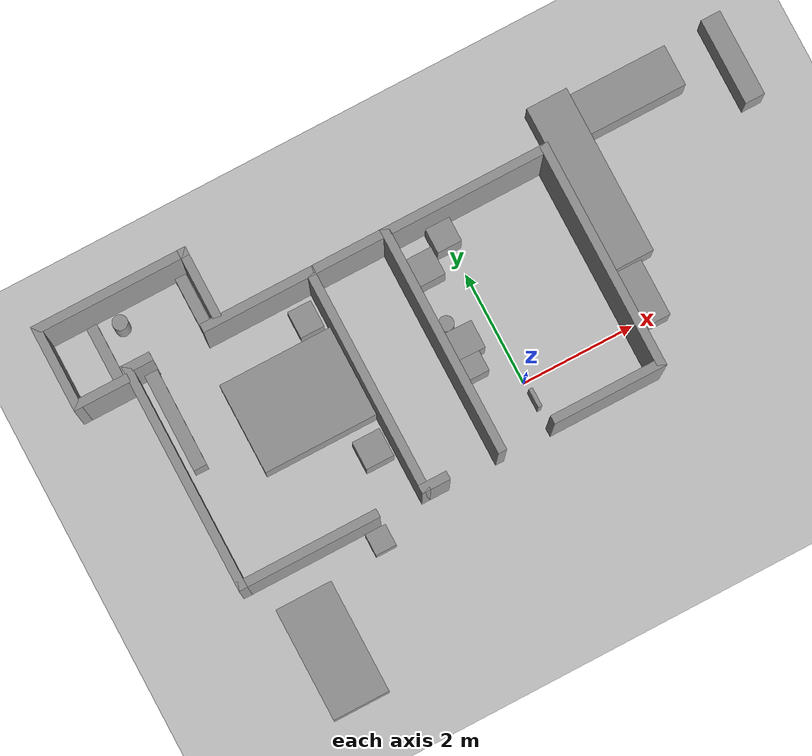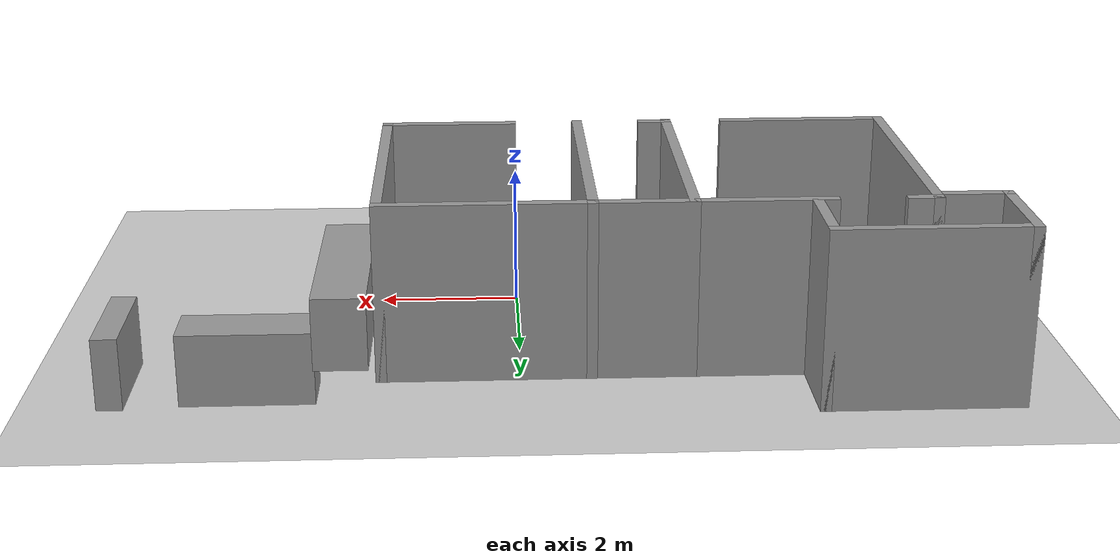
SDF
<sdf version="1.6">
 <world name="default">
  <model name="ground_plane">
   <static>1</static>
   <link name="link">
    <collision name="collision">
     <geometry><plane><normal>0 0 1</normal><size>100 100</size></plane></geometry>
     <surface><friction><ode><mu>100</mu><mu2>50</mu2></ode></friction></surface>
    </collision>
    <visual name="visual">
     <cast_shadows>0</cast_shadows>
     <geometry><plane><normal>0 0 1</normal><size>100 100</size></plane></geometry>
     <material>
      <script><uri>file://media/materials/scripts/gazebo.material</uri><name>Gazebo/Grey</name></script>
     </material>
    </visual>
   </link>
  </model>
  <model name="cma_escritorio">
   <pose>-1.8304 1.03024 0 0 -0 0</pose>
   <link name="Wall_11">
    <collision name="Wall_11_Collision">
     <geometry><box><size>2 0.15 2.5</size></box></geometry>
     <pose>0 0 1.25 0 -0 0</pose>
    </collision>
    <visual name="Wall_11_Visual">
     <pose>0 0 1.25 0 -0 0</pose>
     <geometry><box><size>2 0.15 2.5</size></box></geometry>
     <material>
      <script><uri>file://media/materials/scripts/gazebo.material</uri><name>Gazebo/Grey</name></script>
      <ambient>1 1 1 1</ambient>
     </material>
    </visual>
    <pose>-1.4 1.93 0 0 -0 3.14159</pose>
   </link>
   <link name="Wall_2">
    <collision name="Wall_2_Collision">
     <geometry><box><size>4 0.15 2.5</size></box></geometry>
     <pose>0 0 1.25 0 -0 0</pose>
    </collision>
    <visual name="Wall_2_Visual">
     <pose>0 0 1.25 0 -0 0</pose>
     <geometry><box><size>4 0.15 2.5</size></box></geometry>
     <material>
      <script><uri>file://media/materials/scripts/gazebo.material</uri><name>Gazebo/Grey</name></script>
      <ambient>1 1 1 1</ambient>
     </material>
    </visual>
    <pose>0.875 0.005 0 0 -0 1.5708</pose>
   </link>
   <link name="Wall_25">
    <collision name="Wall_25_Collision">
     <geometry><box><size>2.5 0.15 2.5</size></box></geometry>
     <pose>0 0 1.25 0 -0 0</pose>
    </collision>
    <visual name="Wall_25_Visual">
     <pose>0 0 1.25 0 -0 0</pose>
     <geometry><box><size>2.5 0.15 2.5</size></box></geometry>
     <material>
      <script><uri>file://media/materials/scripts/gazebo.material</uri><name>Gazebo/Grey</name></script>
      <ambient>1 1 1 1</ambient>
     </material>
    </visual>
    <pose>-2.55 -1.93 0 0 -0 3.14159</pose>
   </link>
   <link name="Wall_26">
    <collision name="Wall_26_Collision">
     <geometry><box><size>4 0.15 2.5</size></box></geometry>
     <pose>0 0 1.25 0 -0 0</pose>
    </collision>
    <visual name="Wall_26_Visual">
     <pose>0 0 1.25 0 -0 0</pose>
     <geometry><box><size>4 0.15 2.5</size></box></geometry>
     <material>
      <script><uri>file://media/materials/scripts/gazebo.material</uri><name>Gazebo/Grey</name></script>
      <ambient>1 1 1 1</ambient>
     </material>
    </visual>
    <pose>-3.725 -0.005 0 0 -0 1.5708</pose>
   </link>
   <link name="Wall_27">
    <collision name="Wall_27_Collision">
     <geometry><box><size>0.5 0.15 2.5</size></box></geometry>
     <pose>0 0 1.25 0 -0 0</pose>
    </collision>
    <visual name="Wall_27_Visual">
     <pose>0 0 1.25 0 -0 0</pose>
     <geometry><box><size>0.5 0.15 2.5</size></box></geometry>
     <material>
      <script><uri>file://media/materials/scripts/gazebo.material</uri><name>Gazebo/Grey</name></script>
      <ambient>1 1 1 1</ambient>
     </material>
    </visual>
    <pose>-3.55 1.92 0 0 -0 0</pose>
   </link>
   <link name="Wall_3">
    <collision name="Wall_3_Collision">
     <geometry><box><size>3 0.15 2.5</size></box></geometry>
     <pose>0 0 1.25 0 -0 0</pose>
    </collision>
    <visual name="Wall_3_Visual">
     <pose>0 0 1.25 0 -0 0</pose>
     <geometry><box><size>3 0.15 2.5</size></box></geometry>
     <material>
      <script><uri>file://media/materials/scripts/gazebo.material</uri><name>Gazebo/Grey</name></script>
      <ambient>1 1 1 1</ambient>
     </material>
    </visual>
    <pose>2.3 1.93 0 0 -0 0</pose>
   </link>
   <link name="Wall_4">
    <collision name="Wall_4_Collision">
     <geometry><box><size>4 0.15 2.5</size></box></geometry>
     <pose>0 0 1.25 0 -0 0</pose>
    </collision>
    <visual name="Wall_4_Visual">
     <pose>0 0 1.25 0 -0 0</pose>
     <geometry><box><size>4 0.15 2.5</size></box></geometry>
     <material>
      <script><uri>file://media/materials/scripts/gazebo.material</uri><name>Gazebo/Grey</name></script>
      <ambient>1 1 1 1</ambient>
     </material>
    </visual>
    <pose>3.725 0.005 0 0 0 -1.5708</pose>
   </link>
   <link name="Wall_5">
    <collision name="Wall_5_Collision">
     <geometry><box><size>2 0.15 2.5</size></box></geometry>
     <pose>0 0 1.25 0 -0 0</pose>
    </collision>
    <visual name="Wall_5_Visual">
     <pose>0 0 1.25 0 -0 0</pose>
     <geometry><box><size>2 0.15 2.5</size></box></geometry>
     <material>
      <script><uri>file://media/materials/scripts/gazebo.material</uri><name>Gazebo/Grey</name></script>
      <ambient>1 1 1 1</ambient>
     </material>
    </visual>
    <pose>2.8 -1.92 0 0 -0 3.14159</pose>
   </link>
   <link name="Wall_7">
    <collision name="Wall_7_Collision">
     <geometry><box><size>1.5 0.15 2.5</size></box></geometry>
     <pose>0 0 1.25 0 -0 0</pose>
    </collision>
    <visual name="Wall_7_Visual">
     <pose>0 0 1.25 0 -0 0</pose>
     <geometry><box><size>1.5 0.15 2.5</size></box></geometry>
     <material>
      <script><uri>file://media/materials/scripts/gazebo.material</uri><name>Gazebo/Grey</name></script>
      <ambient>1 1 1 1</ambient>
     </material>
    </visual>
    <pose>0.2 1.93 0 0 -0 3.14159</pose>
   </link>
   <link name="Wall_8">
    <collision name="Wall_8_Collision">
     <geometry><box><size>4 0.15 2.5</size></box></geometry>
     <pose>0 0 1.25 0 -0 0</pose>
    </collision>
    <visual name="Wall_8_Visual">
     <pose>0 0 1.25 0 -0 0</pose>
     <geometry><box><size>4 0.15 2.5</size></box></geometry>
     <material>
      <script><uri>file://media/materials/scripts/gazebo.material</uri><name>Gazebo/Grey</name></script>
      <ambient>1 1 1 1</ambient>
     </material>
    </visual>
    <pose>-0.475 0.005 0 0 0 -1.5708</pose>
   </link>
   <link name="Wall_9">
    <collision name="Wall_9_Collision">
     <geometry><box><size>0.5 0.15 2.5</size></box></geometry>
     <pose>0 0 1.25 0 -0 0</pose>
    </collision>
    <visual name="Wall_9_Visual">
     <pose>0 0 1.25 0 -0 0</pose>
     <geometry><box><size>0.5 0.15 2.5</size></box></geometry>
     <material>
      <script><uri>file://media/materials/scripts/gazebo.material</uri><name>Gazebo/Grey</name></script>
      <ambient>1 1 1 1</ambient>
     </material>
    </visual>
    <pose>-0.3 -1.92 0 0 -0 0</pose>
   </link>
   <static>1</static>
  </model>
  <model name="cma_banheiro">
   <pose>-5.22928 3.4871 0 0 -0 0</pose>
   <link name="Wall_0">
    <collision name="Wall_0_Collision">
     <geometry><box><size>1 0.15 2.5</size></box></geometry>
     <pose>0 0 1.25 0 -0 0</pose>
    </collision>
    <visual name="Wall_0_Visual">
     <pose>0 0 1.25 0 -0 0</pose>
     <geometry><box><size>1 0.15 2.5</size></box></geometry>
     <material>
      <script><uri>file://media/materials/scripts/gazebo.material</uri><name>Gazebo/Grey</name></script>
      <ambient>1 1 1 1</ambient>
     </material>
    </visual>
    <pose>-0.875 -0.675 0 0 -0 3.14159</pose>
   </link>
   <link name="Wall_1">
    <collision name="Wall_1_Collision">
     <geometry><box><size>1.5 0.15 2.5</size></box></geometry>
     <pose>0 0 1.25 0 -0 0</pose>
    </collision>
    <visual name="Wall_1_Visual">
     <pose>0 0 1.25 0 -0 0</pose>
     <geometry><box><size>1.5 0.15 2.5</size></box></geometry>
     <material>
      <script><uri>file://media/materials/scripts/gazebo.material</uri><name>Gazebo/Grey</name></script>
      <ambient>1 1 1 1</ambient>
     </material>
    </visual>
    <pose>-1.3 0 0 0 -0 1.5708</pose>
   </link>
   <link name="Wall_2">
    <collision name="Wall_2_Collision">
     <geometry><box><size>2.75 0.15 2.5</size></box></geometry>
     <pose>0 0 1.25 0 -0 0</pose>
    </collision>
    <visual name="Wall_2_Visual">
     <pose>0 0 1.25 0 -0 0</pose>
     <geometry><box><size>2.75 0.15 2.5</size></box></geometry>
     <material>
      <script><uri>file://media/materials/scripts/gazebo.material</uri><name>Gazebo/Grey</name></script>
      <ambient>1 1 1 1</ambient>
     </material>
    </visual>
    <pose>0 0.675 0 0 -0 0</pose>
   </link>
   <link name="Wall_4">
    <collision name="Wall_4_Collision">
     <geometry><box><size>1.25 0.15 2.5</size></box></geometry>
     <pose>0 0 1.25 0 -0 0</pose>
    </collision>
    <visual name="Wall_4_Visual">
     <pose>0 0 1.25 0 -0 0</pose>
     <geometry><box><size>1.25 0.15 2.5</size></box></geometry>
     <material>
      <script><uri>file://media/materials/scripts/gazebo.material</uri><name>Gazebo/Grey</name></script>
      <ambient>1 1 1 1</ambient>
     </material>
    </visual>
    <pose>1.3 0.125 0 0 0 -1.5708</pose>
   </link>
   <static>1</static>
  </model>
  <model name="cma_gaveteiro_pequeno_0">
   <link name="link_0">
    <pose>0.256174 1.25055 0.5 0 -0 0</pose>
    <inertial>
     <mass>0.187186</mass>
     <inertia>
      <ixx>0.01851</ixx>
      <ixy>0</ixy>
      <ixz>0</ixz>
      <iyy>0.0185276</iyy>
      <iyz>0</iyz>
      <izz>0.00583981</izz>
     </inertia>
    </inertial>
    <visual name="visual">
     <geometry><box><size>0.433317 0.432002 1</size></box></geometry>
     <material>
      <lighting>1</lighting>
      <script><uri>file://media/materials/scripts/gazebo.material</uri><name>Gazebo/Grey</name></script>
      <ambient>0.3 0.3 0.3 1</ambient>
      <diffuse>0.7 0.7 0.7 1</diffuse>
      <specular>0.01 0.01 0.01 1</specular>
      <emissive>0 0 0 1</emissive>
     </material>
    </visual>
    <collision name="collision">
     <geometry><box><size>0.433317 0.432002 1</size></box></geometry>
     <surface>
      <friction>
       <ode><mu>1</mu><mu2>1</mu2><fdir1>0 0 0</fdir1><slip1>0</slip1><slip2>0</slip2></ode>
       <torsional>
        <coefficient>1</coefficient>
        <patch_radius>0</patch_radius>
        <surface_radius>0</surface_radius>
        <use_patch_radius>1</use_patch_radius>
        <ode><slip>0</slip></ode>
       </torsional>
      </friction>
      <bounce><restitution_coefficient>0</restitution_coefficient><threshold>1e+06</threshold></bounce>
      <contact>
       <collide_without_contact>0</collide_without_contact>
       <collide_without_contact_bitmask>1</collide_without_contact_bitmask>
       <collide_bitmask>1</collide_bitmask>
       <ode>
        <soft_cfm>0</soft_cfm>
        <soft_erp>0.2</soft_erp>
        <kp>1e+13</kp>
        <kd>1</kd>
        <max_vel>0.01</max_vel>
        <min_depth>0</min_depth>
       </ode>
       <bullet>
        <split_impulse>1</split_impulse>
        <split_impulse_penetration_threshold>-0.01</split_impulse_penetration_threshold>
        <soft_cfm>0</soft_cfm>
        <soft_erp>0.2</soft_erp>
        <kp>1e+13</kp>
        <kd>1</kd>
       </bullet>
      </contact>
     </surface>
    </collision>
   </link>
   <static>0</static>
   <pose>-0.336046 1.39512 0 0 0 -5.9e-05</pose>
  </model>
  <model name="cma_gaveteiro">
   <link name="link_0">
    <pose>-0 4e-06 0 0 -0 0</pose>
    <inertial>
     <mass>0.245086</mass>
     <inertia>
      <ixx>0.025418</ixx>
      <ixy>0</ixy>
      <ixz>0</ixz>
      <iyy>0.0254411</iyy>
      <iyz>0</iyz>
      <izz>0.0100113</izz>
     </inertia>
    </inertial>
    <visual name="visual">
     <geometry><box><size>0.495657 0.494491 1</size></box></geometry>
     <material>
      <lighting>1</lighting>
      <script><uri>file://media/materials/scripts/gazebo.material</uri><name>Gazebo/Grey</name></script>
      <ambient>0.3 0.3 0.3 1</ambient>
      <diffuse>0.7 0.7 0.7 1</diffuse>
      <specular>0.01 0.01 0.01 1</specular>
      <emissive>0 0 0 1</emissive>
     </material>
    </visual>
    <collision name="collision">
     <geometry><box><size>0.495657 0.494491 1</size></box></geometry>
     <surface>
      <friction>
       <ode><mu>1</mu><mu2>1</mu2><fdir1>0 0 0</fdir1><slip1>0</slip1><slip2>0</slip2></ode>
       <torsional>
        <coefficient>1</coefficient>
        <patch_radius>0</patch_radius>
        <surface_radius>0</surface_radius>
        <use_patch_radius>1</use_patch_radius>
        <ode><slip>0</slip></ode>
       </torsional>
      </friction>
      <bounce><restitution_coefficient>0</restitution_coefficient><threshold>1e+06</threshold></bounce>
      <contact>
       <collide_without_contact>0</collide_without_contact>
       <collide_without_contact_bitmask>1</collide_without_contact_bitmask>
       <collide_bitmask>1</collide_bitmask>
       <ode>
        <soft_cfm>0</soft_cfm>
        <soft_erp>0.2</soft_erp>
        <kp>1e+13</kp>
        <kd>1</kd>
        <max_vel>0.01</max_vel>
        <min_depth>0</min_depth>
       </ode>
       <bullet>
        <split_impulse>1</split_impulse>
        <split_impulse_penetration_threshold>-0.01</split_impulse_penetration_threshold>
        <soft_cfm>0</soft_cfm>
        <soft_erp>0.2</soft_erp>
        <kp>1e+13</kp>
        <kd>1</kd>
       </bullet>
      </contact>
     </surface>
    </collision>
   </link>
   <static>0</static>
   <pose>-0.591988 2.3262 0.5 -1e-06 -1e-06 0.000484</pose>
  </model>
  <model name="cma_gaveteiro_0">
   <link name="link_0">
    <pose>-0 4e-06 0 0 -0 0</pose>
    <inertial>
     <mass>0.245086</mass>
     <inertia>
      <ixx>0.025418</ixx>
      <ixy>0</ixy>
      <ixz>0</ixz>
      <iyy>0.0254411</iyy>
      <iyz>0</iyz>
      <izz>0.0100113</izz>
     </inertia>
    </inertial>
    <visual name="visual">
     <geometry><box><size>0.495657 0.494491 1</size></box></geometry>
     <material>
      <lighting>1</lighting>
      <script><uri>file://media/materials/scripts/gazebo.material</uri><name>Gazebo/Grey</name></script>
      <ambient>0.3 0.3 0.3 1</ambient>
      <diffuse>0.7 0.7 0.7 1</diffuse>
      <specular>0.01 0.01 0.01 1</specular>
      <emissive>0 0 0 1</emissive>
     </material>
    </visual>
    <collision name="collision">
     <geometry><box><size>0.495657 0.494491 1</size></box></geometry>
     <surface>
      <friction>
       <ode><mu>1</mu><mu2>1</mu2><fdir1>0 0 0</fdir1><slip1>0</slip1><slip2>0</slip2></ode>
       <torsional>
        <coefficient>1</coefficient>
        <patch_radius>0</patch_radius>
        <surface_radius>0</surface_radius>
        <use_patch_radius>1</use_patch_radius>
        <ode><slip>0</slip></ode>
       </torsional>
      </friction>
      <bounce><restitution_coefficient>0</restitution_coefficient><threshold>1e+06</threshold></bounce>
      <contact>
       <collide_without_contact>0</collide_without_contact>
       <collide_without_contact_bitmask>1</collide_without_contact_bitmask>
       <collide_bitmask>1</collide_bitmask>
       <ode>
        <soft_cfm>0</soft_cfm>
        <soft_erp>0.2</soft_erp>
        <kp>1e+13</kp>
        <kd>1</kd>
        <max_vel>0.01</max_vel>
        <min_depth>0</min_depth>
       </ode>
       <bullet>
        <split_impulse>1</split_impulse>
        <split_impulse_penetration_threshold>-0.01</split_impulse_penetration_threshold>
        <soft_cfm>0</soft_cfm>
        <soft_erp>0.2</soft_erp>
        <kp>1e+13</kp>
        <kd>1</kd>
       </bullet>
      </contact>
     </surface>
    </collision>
   </link>
   <static>0</static>
   <pose>-0.577892 0.984091 0.499999 -2e-06 -0 -0.014211</pose>
  </model>
  <model name="cma_lixo_0">
   <link name="link_1">
    <pose>0.882962 1.81586 0.5 0 -0 0</pose>
    <inertial>
     <mass>0.0687644</mass>
     <inertia>
      <ixx>0.00602588</ixx>
      <ixy>0</ixy>
      <ixz>0</ixz>
      <iyy>0.00602588</iyy>
      <iyz>0</iyz>
      <izz>0.000591068</izz>
     </inertia>
    </inertial>
    <visual name="visual">
     <geometry><cylinder><radius>0.131112</radius><length>1</length></cylinder></geometry>
     <material>
      <lighting>1</lighting>
      <script><uri>file://media/materials/scripts/gazebo.material</uri><name>Gazebo/Grey</name></script>
      <ambient>0.3 0.3 0.3 1</ambient>
      <diffuse>0.7 0.7 0.7 1</diffuse>
      <specular>0.01 0.01 0.01 1</specular>
      <emissive>0 0 0 1</emissive>
     </material>
    </visual>
    <collision name="collision">
     <geometry><cylinder><radius>0.131112</radius><length>1</length></cylinder></geometry>
     <surface>
      <friction>
       <ode><mu>1</mu><mu2>1</mu2><fdir1>0 0 0</fdir1><slip1>0</slip1><slip2>0</slip2></ode>
       <torsional>
        <coefficient>1</coefficient>
        <patch_radius>0</patch_radius>
        <surface_radius>0</surface_radius>
        <use_patch_radius>1</use_patch_radius>
        <ode><slip>0</slip></ode>
       </torsional>
      </friction>
      <bounce><restitution_coefficient>0</restitution_coefficient><threshold>1e+06</threshold></bounce>
      <contact>
       <collide_without_contact>0</collide_without_contact>
       <collide_without_contact_bitmask>1</collide_without_contact_bitmask>
       <collide_bitmask>1</collide_bitmask>
       <ode>
        <soft_cfm>0</soft_cfm>
        <soft_erp>0.2</soft_erp>
        <kp>1e+13</kp>
        <kd>1</kd>
        <max_vel>0.01</max_vel>
        <min_depth>0</min_depth>
       </ode>
       <bullet>
        <split_impulse>1</split_impulse>
        <split_impulse_penetration_threshold>-0.01</split_impulse_penetration_threshold>
        <soft_cfm>0</soft_cfm>
        <soft_erp>0.2</soft_erp>
        <kp>1e+13</kp>
        <kd>1</kd>
       </bullet>
      </contact>
     </surface>
    </collision>
   </link>
   <static>0</static>
   <pose>-1.60935 -0.442731 -1e-06 0 0 -0.009777</pose>
  </model>
  <model name="cma_sofa2">
   <link name="link_0">
    <pose>-4.668 -2.00601 0.5 0 -0 0</pose>
    <inertial>
     <mass>1.98683</mass>
     <inertia>
      <ixx>0.819149</ixx>
      <ixy>0</ixy>
      <ixz>0</ixz>
      <iyy>0.331138</iyy>
      <iyz>0</iyz>
      <izz>0.819149</izz>
     </inertia>
    </inertial>
    <visual name="visual">
     <geometry><box><size>1 1.98682 1</size></box></geometry>
     <material>
      <lighting>1</lighting>
      <script><uri>file://media/materials/scripts/gazebo.material</uri><name>Gazebo/Grey</name></script>
      <ambient>0.3 0.3 0.3 1</ambient>
      <diffuse>0.7 0.7 0.7 1</diffuse>
      <specular>0.01 0.01 0.01 1</specular>
      <emissive>0 0 0 1</emissive>
     </material>
    </visual>
    <collision name="collision">
     <geometry><box><size>1 1.98682 1</size></box></geometry>
     <surface>
      <friction>
       <ode><mu>1</mu><mu2>1</mu2><fdir1>0 0 0</fdir1><slip1>0</slip1><slip2>0</slip2></ode>
       <torsional>
        <coefficient>1</coefficient>
        <patch_radius>0</patch_radius>
        <surface_radius>0</surface_radius>
        <use_patch_radius>1</use_patch_radius>
        <ode><slip>0</slip></ode>
       </torsional>
      </friction>
      <bounce><restitution_coefficient>0</restitution_coefficient><threshold>1e+06</threshold></bounce>
      <contact>
       <collide_without_contact>0</collide_without_contact>
       <collide_without_contact_bitmask>1</collide_without_contact_bitmask>
       <collide_bitmask>1</collide_bitmask>
       <ode>
        <soft_cfm>0</soft_cfm>
        <soft_erp>0.2</soft_erp>
        <kp>1e+13</kp>
        <kd>1</kd>
        <max_vel>0.01</max_vel>
        <min_depth>0</min_depth>
       </ode>
       <bullet>
        <split_impulse>1</split_impulse>
        <split_impulse_penetration_threshold>-0.01</split_impulse_penetration_threshold>
        <soft_cfm>0</soft_cfm>
        <soft_erp>0.2</soft_erp>
        <kp>1e+13</kp>
        <kd>1</kd>
       </bullet>
      </contact>
     </surface>
    </collision>
   </link>
   <static>0</static>
   <pose>-0.09533 -0.407834 -1.4e-05 -0 3e-06 1e-06</pose>
  </model>
  <model name="cma_apoio_s">
   <link name="link_1">
    <pose>-1.9376 -3.46551 0.5 0 -0 0</pose>
    <inertial>
     <mass>0.0878463</mass>
     <inertia>
      <ixx>0.00392696</ixx>
      <ixy>0</ixy>
      <ixz>0</ixz>
      <iyy>0.00385356</iyy>
      <iyz>0</iyz>
      <izz>0.0020587</izz>
     </inertia>
    </inertial>
    <visual name="visual">
     <geometry><box><size>0.368223 0.381592 0.625118</size></box></geometry>
     <material>
      <lighting>1</lighting>
      <script><uri>file://media/materials/scripts/gazebo.material</uri><name>Gazebo/Grey</name></script>
      <ambient>0.3 0.3 0.3 1</ambient>
      <diffuse>0.7 0.7 0.7 1</diffuse>
      <specular>0.01 0.01 0.01 1</specular>
      <emissive>0 0 0 1</emissive>
     </material>
    </visual>
    <collision name="collision">
     <geometry><box><size>0.368223 0.381592 0.625118</size></box></geometry>
     <surface>
      <friction>
       <ode><mu>1</mu><mu2>1</mu2><fdir1>0 0 0</fdir1><slip1>0</slip1><slip2>0</slip2></ode>
       <torsional>
        <coefficient>1</coefficient>
        <patch_radius>0</patch_radius>
        <surface_radius>0</surface_radius>
        <use_patch_radius>1</use_patch_radius>
        <ode><slip>0</slip></ode>
       </torsional>
      </friction>
      <bounce><restitution_coefficient>0</restitution_coefficient><threshold>1e+06</threshold></bounce>
      <contact>
       <collide_without_contact>0</collide_without_contact>
       <collide_without_contact_bitmask>1</collide_without_contact_bitmask>
       <collide_bitmask>1</collide_bitmask>
       <ode>
        <soft_cfm>0</soft_cfm>
        <soft_erp>0.2</soft_erp>
        <kp>1e+13</kp>
        <kd>1</kd>
        <max_vel>0.01</max_vel>
        <min_depth>0</min_depth>
       </ode>
       <bullet>
        <split_impulse>1</split_impulse>
        <split_impulse_penetration_threshold>-0.01</split_impulse_penetration_threshold>
        <soft_cfm>0</soft_cfm>
        <soft_erp>0.2</soft_erp>
        <kp>1e+13</kp>
        <kd>1</kd>
       </bullet>
      </contact>
     </surface>
    </collision>
   </link>
   <static>0</static>
   <pose>-1.30905 2.27098 -0.187446 -1e-06 1e-06 -0.000832</pose>
  </model>
  <model name="cma_cama_c_0">
   <link name="link_0">
    <pose>5e-06 -4e-06 0 0 -0 0</pose>
    <inertial>
     <mass>3.18358</mass>
     <inertia><ixx>0.934862</ixx><ixy>0</ixy><ixz>0</ixz><iyy>1.33069</iyy><iyz>0</iyz><izz>1.73496</izz></inertia>
    </inertial>
    <visual name="visual">
     <geometry><box><size>2.00394 1.58866 1</size></box></geometry>
     <material>
      <lighting>1</lighting>
      <script><uri>file://media/materials/scripts/gazebo.material</uri><name>Gazebo/Grey</name></script>
      <ambient>0.3 0.3 0.3 1</ambient>
      <diffuse>0.7 0.7 0.7 1</diffuse>
      <specular>0.01 0.01 0.01 1</specular>
      <emissive>0 0 0 1</emissive>
     </material>
    </visual>
    <collision name="collision">
     <geometry><box><size>2.00394 1.58866 1</size></box></geometry>
     <surface>
      <friction>
       <ode><mu>1</mu><mu2>1</mu2><fdir1>0 0 0</fdir1><slip1>0</slip1><slip2>0</slip2></ode>
       <torsional>
        <coefficient>1</coefficient>
        <patch_radius>0</patch_radius>
        <surface_radius>0</surface_radius>
        <use_patch_radius>1</use_patch_radius>
        <ode><slip>0</slip></ode>
       </torsional>
      </friction>
      <bounce><restitution_coefficient>0</restitution_coefficient><threshold>1e+06</threshold></bounce>
      <contact>
       <collide_without_contact>0</collide_without_contact>
       <collide_without_contact_bitmask>1</collide_without_contact_bitmask>
       <collide_bitmask>1</collide_bitmask>
       <ode>
        <soft_cfm>0</soft_cfm>
        <soft_erp>0.2</soft_erp>
        <kp>1e+13</kp>
        <kd>1</kd>
        <max_vel>0.01</max_vel>
        <min_depth>0</min_depth>
       </ode>
       <bullet>
        <split_impulse>1</split_impulse>
        <split_impulse_penetration_threshold>-0.01</split_impulse_penetration_threshold>
        <soft_cfm>0</soft_cfm>
        <soft_erp>0.2</soft_erp>
        <kp>1e+13</kp>
        <kd>1</kd>
       </bullet>
      </contact>
     </surface>
    </collision>
   </link>
   <static>0</static>
   <pose>-3.38238 1.38787 0.5 0 0 -2e-06</pose>
  </model>
  <model name="cma_bau_s_0">
   <link name="link_1">
    <pose>0.109594 0.272293 0 0 -0 0</pose>
    <inertial>
     <mass>0.125479</mass>
     <inertia>
      <ixx>0.00641943</ixx>
      <ixy>0</ixy>
      <ixz>0</ixz>
      <iyy>0.0059754</iyy>
      <iyz>0</iyz>
      <izz>0.00422085</izz>
     </inertia>
    </inertial>
    <visual name="visual">
     <geometry><box><size>0.424964 0.472283 0.625118</size></box></geometry>
     <material>
      <lighting>1</lighting>
      <script><uri>file://media/materials/scripts/gazebo.material</uri><name>Gazebo/Grey</name></script>
      <ambient>0.3 0.3 0.3 1</ambient>
      <diffuse>0.7 0.7 0.7 1</diffuse>
      <specular>0.01 0.01 0.01 1</specular>
      <emissive>0 0 0 1</emissive>
     </material>
    </visual>
    <collision name="collision">
     <geometry><box><size>0.424964 0.472283 0.625118</size></box></geometry>
     <surface>
      <friction>
       <ode><mu>1</mu><mu2>1</mu2><fdir1>0 0 0</fdir1><slip1>0</slip1><slip2>0</slip2></ode>
       <torsional>
        <coefficient>1</coefficient>
        <patch_radius>0</patch_radius>
        <surface_radius>0</surface_radius>
        <use_patch_radius>1</use_patch_radius>
        <ode><slip>0</slip></ode>
       </torsional>
      </friction>
      <bounce><restitution_coefficient>0</restitution_coefficient><threshold>1e+06</threshold></bounce>
      <contact>
       <collide_without_contact>0</collide_without_contact>
       <collide_without_contact_bitmask>1</collide_without_contact_bitmask>
       <collide_bitmask>1</collide_bitmask>
       <ode>
        <soft_cfm>0</soft_cfm>
        <soft_erp>0.2</soft_erp>
        <kp>1e+13</kp>
        <kd>1</kd>
        <max_vel>0.01</max_vel>
        <min_depth>0</min_depth>
       </ode>
       <bullet>
        <split_impulse>1</split_impulse>
        <split_impulse_penetration_threshold>-0.01</split_impulse_penetration_threshold>
        <soft_cfm>0</soft_cfm>
        <soft_erp>0.2</soft_erp>
        <kp>1e+13</kp>
        <kd>1</kd>
       </bullet>
      </contact>
     </surface>
    </collision>
   </link>
   <static>0</static>
   <pose>-2.76515 2.24278 0.312554 9e-06 8e-06 -0.000127</pose>
  </model>
  <model name="cma_gaveteiro_1">
   <link name="link_0">
    <pose>-0 4e-06 0 0 -0 0</pose>
    <inertial>
     <mass>0.245086</mass>
     <inertia>
      <ixx>0.025418</ixx>
      <ixy>0</ixy>
      <ixz>0</ixz>
      <iyy>0.0254411</iyy>
      <iyz>0</iyz>
      <izz>0.0100113</izz>
     </inertia>
    </inertial>
    <visual name="visual">
     <geometry><box><size>0.495657 0.494491 1</size></box></geometry>
     <material>
      <lighting>1</lighting>
      <script><uri>file://media/materials/scripts/gazebo.material</uri><name>Gazebo/Grey</name></script>
      <ambient>0.3 0.3 0.3 1</ambient>
      <diffuse>0.7 0.7 0.7 1</diffuse>
      <specular>0.01 0.01 0.01 1</specular>
      <emissive>0 0 0 1</emissive>
     </material>
    </visual>
    <collision name="collision">
     <geometry><box><size>0.495657 0.494491 1</size></box></geometry>
     <surface>
      <friction>
       <ode><mu>1</mu><mu2>1</mu2><fdir1>0 0 0</fdir1><slip1>0</slip1><slip2>0</slip2></ode>
       <torsional>
        <coefficient>1</coefficient>
        <patch_radius>0</patch_radius>
        <surface_radius>0</surface_radius>
        <use_patch_radius>1</use_patch_radius>
        <ode><slip>0</slip></ode>
       </torsional>
      </friction>
      <bounce><restitution_coefficient>0</restitution_coefficient><threshold>1e+06</threshold></bounce>
      <contact>
       <collide_without_contact>0</collide_without_contact>
       <collide_without_contact_bitmask>1</collide_without_contact_bitmask>
       <collide_bitmask>1</collide_bitmask>
       <ode>
        <soft_cfm>0</soft_cfm>
        <soft_erp>0.2</soft_erp>
        <kp>1e+13</kp>
        <kd>1</kd>
        <max_vel>0.01</max_vel>
        <min_depth>0</min_depth>
       </ode>
       <bullet>
        <split_impulse>1</split_impulse>
        <split_impulse_penetration_threshold>-0.01</split_impulse_penetration_threshold>
        <soft_cfm>0</soft_cfm>
        <soft_erp>0.2</soft_erp>
        <kp>1e+13</kp>
        <kd>1</kd>
       </bullet>
      </contact>
     </surface>
    </collision>
   </link>
   <static>0</static>
   <pose>-2.68859 0.131625 0.500001 1e-06 -1e-06 -0.000152</pose>
  </model>
  <model name="cma_armario_6">
   <link name="link_0">
    <pose>1.32157 0.885178 0.5 0 -0 0</pose>
    <inertial>
     <mass>0.402376</mass>
     <inertia>
      <ixx>0.0353686</ixx>
      <ixy>0</ixy>
      <ixz>0</ixz>
      <iyy>0.132616</iyy>
      <iyz>0</iyz>
      <izz>0.100922</izz>
     </inertia>
    </inertial>
    <visual name="visual">
     <geometry><box><size>1.71877 0.234069 1</size></box></geometry>
     <material>
      <lighting>1</lighting>
      <script><uri>file://media/materials/scripts/gazebo.material</uri><name>Gazebo/Grey</name></script>
      <ambient>0.3 0.3 0.3 1</ambient>
      <diffuse>0.7 0.7 0.7 1</diffuse>
      <specular>0.01 0.01 0.01 1</specular>
      <emissive>0 0 0 1</emissive>
     </material>
    </visual>
    <collision name="collision">
     <geometry><box><size>1.71877 0.234069 1</size></box></geometry>
     <surface>
      <friction>
       <ode><mu>1</mu><mu2>1</mu2><fdir1>0 0 0</fdir1><slip1>0</slip1><slip2>0</slip2></ode>
       <torsional>
        <coefficient>1</coefficient>
        <patch_radius>0</patch_radius>
        <surface_radius>0</surface_radius>
        <use_patch_radius>1</use_patch_radius>
        <ode><slip>0</slip></ode>
       </torsional>
      </friction>
      <bounce><restitution_coefficient>0</restitution_coefficient><threshold>1e+06</threshold></bounce>
      <contact>
       <collide_without_contact>0</collide_without_contact>
       <collide_without_contact_bitmask>1</collide_without_contact_bitmask>
       <collide_bitmask>1</collide_bitmask>
       <ode>
        <soft_cfm>0</soft_cfm>
        <soft_erp>0.2</soft_erp>
        <kp>1e+13</kp>
        <kd>1</kd>
        <max_vel>0.01</max_vel>
        <min_depth>0</min_depth>
       </ode>
       <bullet>
        <split_impulse>1</split_impulse>
        <split_impulse_penetration_threshold>-0.01</split_impulse_penetration_threshold>
        <soft_cfm>0</soft_cfm>
        <soft_erp>0.2</soft_erp>
        <kp>1e+13</kp>
        <kd>1</kd>
       </bullet>
      </contact>
     </surface>
    </collision>
   </link>
   <static>0</static>
   <pose>-4.38662 0.687517 0 0 -0 1.56588</pose>
  </model>
  <model name="cma_gaveteiro_pequeno_e">
   <link name="link_1">
    <pose>1e-06 -3e-06 0 0 -0 0</pose>
    <inertial>
     <mass>0.145532</mass>
     <inertia>
      <ixx>0.0136813</ixx>
      <ixy>0</ixy>
      <ixz>0</ixz>
      <iyy>0.0141327</iyy>
      <iyz>0</iyz>
      <izz>0.00355866</izz>
     </inertia>
    </inertial>
    <visual name="visual">
     <geometry><box><size>0.4066 0.357918 1</size></box></geometry>
     <material>
      <lighting>1</lighting>
      <script><uri>file://media/materials/scripts/gazebo.material</uri><name>Gazebo/Grey</name></script>
      <ambient>0.3 0.3 0.3 1</ambient>
      <diffuse>0.7 0.7 0.7 1</diffuse>
      <specular>0.01 0.01 0.01 1</specular>
      <emissive>0 0 0 1</emissive>
     </material>
    </visual>
    <collision name="collision">
     <geometry><box><size>0.4066 0.357918 1</size></box></geometry>
     <surface>
      <friction>
       <ode><mu>1</mu><mu2>1</mu2><fdir1>0 0 0</fdir1><slip1>0</slip1><slip2>0</slip2></ode>
       <torsional>
        <coefficient>1</coefficient>
        <patch_radius>0</patch_radius>
        <surface_radius>0</surface_radius>
        <use_patch_radius>1</use_patch_radius>
        <ode><slip>0</slip></ode>
       </torsional>
      </friction>
      <bounce><restitution_coefficient>0</restitution_coefficient><threshold>1e+06</threshold></bounce>
      <contact>
       <collide_without_contact>0</collide_without_contact>
       <collide_without_contact_bitmask>1</collide_without_contact_bitmask>
       <collide_bitmask>1</collide_bitmask>
       <ode>
        <soft_cfm>0</soft_cfm>
        <soft_erp>0.2</soft_erp>
        <kp>1e+13</kp>
        <kd>1</kd>
        <max_vel>0.01</max_vel>
        <min_depth>0</min_depth>
       </ode>
       <bullet>
        <split_impulse>1</split_impulse>
        <split_impulse_penetration_threshold>-0.01</split_impulse_penetration_threshold>
        <soft_cfm>0</soft_cfm>
        <soft_erp>0.2</soft_erp>
        <kp>1e+13</kp>
        <kd>1</kd>
       </bullet>
      </contact>
     </surface>
    </collision>
   </link>
   <static>0</static>
   <pose>-0.652945 0.558916 0.500001 0 5e-06 -0.014212</pose>
  </model>
  <model name="cma_pe_mesa2">
   <link name="link_0">
    <pose>-1e-06 0 0 0 -0 0</pose>
    <inertial>
     <mass>0.0184993</mass>
     <inertia>
      <ixx>0.00113785</ixx>
      <ixy>0</ixy>
      <ixz>0</ixz>
      <iyy>0.000973568</iyy>
      <iyz>0</iyz>
      <izz>0.000179385</izz>
     </inertia>
    </inertial>
    <visual name="visual">
     <geometry><box><size>0.070005 0.33386 0.791592</size></box></geometry>
     <material>
      <lighting>1</lighting>
      <script><uri>file://media/materials/scripts/gazebo.material</uri><name>Gazebo/Grey</name></script>
      <ambient>0.3 0.3 0.3 1</ambient>
      <diffuse>0.7 0.7 0.7 1</diffuse>
      <specular>0.01 0.01 0.01 1</specular>
      <emissive>0 0 0 1</emissive>
     </material>
    </visual>
    <collision name="collision">
     <geometry><box><size>0.070005 0.33386 0.791592</size></box></geometry>
     <surface>
      <friction>
       <ode><mu>1</mu><mu2>1</mu2><fdir1>0 0 0</fdir1><slip1>0</slip1><slip2>0</slip2></ode>
       <torsional>
        <coefficient>1</coefficient>
        <patch_radius>0</patch_radius>
        <surface_radius>0</surface_radius>
        <use_patch_radius>1</use_patch_radius>
        <ode><slip>0</slip></ode>
       </torsional>
      </friction>
      <bounce><restitution_coefficient>0</restitution_coefficient><threshold>1e+06</threshold></bounce>
      <contact>
       <collide_without_contact>0</collide_without_contact>
       <collide_without_contact_bitmask>1</collide_without_contact_bitmask>
       <collide_bitmask>1</collide_bitmask>
       <ode>
        <soft_cfm>0</soft_cfm>
        <soft_erp>0.2</soft_erp>
        <kp>1e+13</kp>
        <kd>1</kd>
        <max_vel>0.01</max_vel>
        <min_depth>0</min_depth>
       </ode>
       <bullet>
        <split_impulse>1</split_impulse>
        <split_impulse_penetration_threshold>-0.01</split_impulse_penetration_threshold>
        <soft_cfm>0</soft_cfm>
        <soft_erp>0.2</soft_erp>
        <kp>1e+13</kp>
        <kd>1</kd>
       </bullet>
      </contact>
     </surface>
    </collision>
   </link>
   <static>0</static>
   <pose>0.008635 -0.342091 0.395796 0 -2e-06 0.000297</pose>
  </model>
  <model name="cma_armario_coz_190x70cm">
   <link name="link_0">
    <pose>5.20958 2.97661 0.5 0 0 -1.57068</pose>
    <inertial>
     <mass>1.2966</mass>
     <inertia>
      <ixx>0.454477</ixx>
      <ixy>0</ixy>
      <ixz>0</ixz>
      <iyy>0.164706</iyy>
      <iyz>0</iyz>
      <izz>0.403084</izz>
     </inertia>
    </inertial>
    <visual name="visual">
     <geometry><box><size>0.724184 1.79058 1</size></box></geometry>
     <material>
      <lighting>1</lighting>
      <script><uri>file://media/materials/scripts/gazebo.material</uri><name>Gazebo/Grey</name></script>
      <ambient>0.3 0.3 0.3 1</ambient>
      <diffuse>0.7 0.7 0.7 1</diffuse>
      <specular>0.01 0.01 0.01 1</specular>
      <emissive>0 0 0 1</emissive>
     </material>
    </visual>
    <collision name="collision">
     <geometry><box><size>0.724184 1.79058 1</size></box></geometry>
     <surface>
      <friction>
       <ode><mu>1</mu><mu2>1</mu2><fdir1>0 0 0</fdir1><slip1>0</slip1><slip2>0</slip2></ode>
       <torsional>
        <coefficient>1</coefficient>
        <patch_radius>0</patch_radius>
        <surface_radius>0</surface_radius>
        <use_patch_radius>1</use_patch_radius>
        <ode><slip>0</slip></ode>
       </torsional>
      </friction>
      <bounce><restitution_coefficient>0</restitution_coefficient><threshold>1e+06</threshold></bounce>
      <contact>
       <collide_without_contact>0</collide_without_contact>
       <collide_without_contact_bitmask>1</collide_without_contact_bitmask>
       <collide_bitmask>1</collide_bitmask>
       <ode>
        <soft_cfm>0</soft_cfm>
        <soft_erp>0.2</soft_erp>
        <kp>1e+13</kp>
        <kd>1</kd>
        <max_vel>0.01</max_vel>
        <min_depth>0</min_depth>
       </ode>
       <bullet>
        <split_impulse>1</split_impulse>
        <split_impulse_penetration_threshold>-0.01</split_impulse_penetration_threshold>
        <soft_cfm>0</soft_cfm>
        <soft_erp>0.2</soft_erp>
        <kp>1e+13</kp>
        <kd>1</kd>
       </bullet>
      </contact>
     </surface>
    </collision>
   </link>
   <model name="cma_armario_coz_100x50cm">
    <link name="link_0">
     <pose>-3e-06 -3e-06 0 0 -0 0</pose>
     <inertial>
      <mass>0.536193</mass>
      <inertia>
       <ixx>0.0893657</ixx>
       <ixy>0</ixy>
       <ixz>0</ixz>
       <iyy>0.0575293</iyy>
       <iyz>0</iyz>
       <izz>0.0575293</izz>
      </inertia>
     </inertial>
     <visual name="visual">
      <geometry><box><size>0.536193 1 1</size></box></geometry>
      <material>
       <lighting>1</lighting>
       <script><uri>file://media/materials/scripts/gazebo.material</uri><name>Gazebo/Grey</name></script>
       <ambient>0.3 0.3 0.3 1</ambient>
       <diffuse>0.7 0.7 0.7 1</diffuse>
       <specular>0.01 0.01 0.01 1</specular>
       <emissive>0 0 0 1</emissive>
      </material>
     </visual>
     <collision name="collision">
      <geometry><box><size>0.536193 1 1</size></box></geometry>
      <surface>
       <friction>
        <ode><mu>1</mu><mu2>1</mu2><fdir1>0 0 0</fdir1><slip1>0</slip1><slip2>0</slip2></ode>
        <torsional>
         <coefficient>1</coefficient>
         <patch_radius>0</patch_radius>
         <surface_radius>0</surface_radius>
         <use_patch_radius>1</use_patch_radius>
         <ode><slip>0</slip></ode>
        </torsional>
       </friction>
       <bounce><restitution_coefficient>0</restitution_coefficient><threshold>1e+06</threshold></bounce>
       <contact>
        <collide_without_contact>0</collide_without_contact>
        <collide_without_contact_bitmask>1</collide_without_contact_bitmask>
        <collide_bitmask>1</collide_bitmask>
        <ode>
         <soft_cfm>0</soft_cfm>
         <soft_erp>0.2</soft_erp>
         <kp>1e+13</kp>
         <kd>1</kd>
         <max_vel>0.01</max_vel>
         <min_depth>0</min_depth>
        </ode>
        <bullet>
         <split_impulse>1</split_impulse>
         <split_impulse_penetration_threshold>-0.01</split_impulse_penetration_threshold>
         <soft_cfm>0</soft_cfm>
         <soft_erp>0.2</soft_erp>
         <kp>1e+13</kp>
         <kd>1</kd>
        </bullet>
       </contact>
      </surface>
     </collision>
    </link>
    <static>0</static>
    <pose>3.86455 -0.048915 0.5 0 -0 0</pose>
   </model>
   <model name="cma_armario_coz_300x70cm">
    <link name="link_0">
     <pose>3.26428 1.50856 0.5 0 -0 0</pose>
     <inertial>
      <mass>2.13833</mass>
      <inertia><ixx>1.732</ixx><ixy>0</ixy><ixz>0</ixz><iyy>0.271637</iyy><iyz>0</iyz><izz>1.64725</izz></inertia>
     </inertial>
     <visual name="visual">
      <geometry><box><size>0.724184 2.9529 1</size></box></geometry>
      <material>
       <lighting>1</lighting>
       <script><uri>file://media/materials/scripts/gazebo.material</uri><name>Gazebo/Grey</name></script>
       <ambient>0.3 0.3 0.3 1</ambient>
       <diffuse>0.7 0.7 0.7 1</diffuse>
       <specular>0.01 0.01 0.01 1</specular>
       <emissive>0 0 0 1</emissive>
      </material>
     </visual>
     <collision name="collision">
      <geometry><box><size>0.724184 2.9529 1</size></box></geometry>
      <surface>
       <friction>
        <ode><mu>1</mu><mu2>1</mu2><fdir1>0 0 0</fdir1><slip1>0</slip1><slip2>0</slip2></ode>
        <torsional>
         <coefficient>1</coefficient>
         <patch_radius>0</patch_radius>
         <surface_radius>0</surface_radius>
         <use_patch_radius>1</use_patch_radius>
         <ode><slip>0</slip></ode>
        </torsional>
       </friction>
       <bounce><restitution_coefficient>0</restitution_coefficient><threshold>1e+06</threshold></bounce>
       <contact>
        <collide_without_contact>0</collide_without_contact>
        <collide_without_contact_bitmask>1</collide_without_contact_bitmask>
        <collide_bitmask>1</collide_bitmask>
        <ode>
         <soft_cfm>0</soft_cfm>
         <soft_erp>0.2</soft_erp>
         <kp>1e+13</kp>
         <kd>1</kd>
         <max_vel>0.01</max_vel>
         <min_depth>0</min_depth>
        </ode>
        <bullet>
         <split_impulse>1</split_impulse>
         <split_impulse_penetration_threshold>-0.01</split_impulse_penetration_threshold>
         <soft_cfm>0</soft_cfm>
         <soft_erp>0.2</soft_erp>
         <kp>1e+13</kp>
         <kd>1</kd>
        </bullet>
       </contact>
      </surface>
     </collision>
    </link>
    <static>0</static>
    <pose>0.706289 0.418831 0.5 0 -0 0</pose>
   </model>
   <static>0</static>
   <pose>-1.5961 0.363887 0 0 -0 0</pose>
  </model>
  <model name="cma_armario_coz_150x20cm">
   <link name="link_1">
    <pose>7.18686 2.75247 0.5 0 -0 0</pose>
    <inertial>
     <mass>0.531573</mass>
     <inertia>
      <ixx>0.147651</ixx>
      <ixy>0</ixy>
      <ixz>0</ixz>
      <iyy>0.0496628</iyy>
      <iyz>0</iyz>
      <izz>0.108718</izz>
     </inertia>
    </inertial>
    <visual name="visual">
     <geometry><box><size>0.348023 1.52746 1</size></box></geometry>
     <material>
      <lighting>1</lighting>
      <script><uri>file://media/materials/scripts/gazebo.material</uri><name>Gazebo/Grey</name></script>
      <ambient>0.3 0.3 0.3 1</ambient>
      <diffuse>0.7 0.7 0.7 1</diffuse>
      <specular>0.01 0.01 0.01 1</specular>
      <emissive>0 0 0 1</emissive>
     </material>
    </visual>
    <collision name="collision">
     <geometry><box><size>0.348023 1.52746 1</size></box></geometry>
     <surface>
      <friction>
       <ode><mu>1</mu><mu2>1</mu2><fdir1>0 0 0</fdir1><slip1>0</slip1><slip2>0</slip2></ode>
       <torsional>
        <coefficient>1</coefficient>
        <patch_radius>0</patch_radius>
        <surface_radius>0</surface_radius>
        <use_patch_radius>1</use_patch_radius>
        <ode><slip>0</slip></ode>
       </torsional>
      </friction>
      <bounce><restitution_coefficient>0</restitution_coefficient><threshold>1e+06</threshold></bounce>
      <contact>
       <collide_without_contact>0</collide_without_contact>
       <collide_without_contact_bitmask>1</collide_without_contact_bitmask>
       <collide_bitmask>1</collide_bitmask>
       <ode>
        <soft_cfm>0</soft_cfm>
        <soft_erp>0.2</soft_erp>
        <kp>1e+13</kp>
        <kd>1</kd>
        <max_vel>0.01</max_vel>
        <min_depth>0</min_depth>
       </ode>
       <bullet>
        <split_impulse>1</split_impulse>
        <split_impulse_penetration_threshold>-0.01</split_impulse_penetration_threshold>
        <soft_cfm>0</soft_cfm>
        <soft_erp>0.2</soft_erp>
        <kp>1e+13</kp>
        <kd>1</kd>
       </bullet>
      </contact>
     </surface>
    </collision>
   </link>
   <static>0</static>
   <pose>-1.79432 0.264631 0 0 -0 0</pose>
  </model>
  <model name="unit_box_5">
   <pose>-4.12339 3.57259 0.5 0 -0 0</pose>
   <link name="link">
    <inertial>
     <mass>1</mass>
     <inertia>
      <ixx>0.166667</ixx>
      <ixy>0</ixy>
      <ixz>0</ixz>
      <iyy>0.166667</iyy>
      <iyz>0</iyz>
      <izz>0.166667</izz>
     </inertia>
    </inertial>
    <collision name="collision">
     <geometry><box><size>0.197819 0.958366 0.572861</size></box></geometry>
    </collision>
    <visual name="visual">
     <geometry><box><size>0.197819 0.958366 0.572861</size></box></geometry>
     <material>
      <script><name>Gazebo/Grey</name><uri>file://media/materials/scripts/gazebo.material</uri></script>
     </material>
    </visual>
   </link>
  </model>
  <model name="cma_lixo_6">
   <link name="link_1">
    <pose>0.882962 1.81586 0.5 0 -0 0</pose>
    <inertial>
     <mass>0.0687644</mass>
     <inertia>
      <ixx>0.00602588</ixx>
      <ixy>0</ixy>
      <ixz>0</ixz>
      <iyy>0.00602588</iyy>
      <iyz>0</iyz>
      <izz>0.000591068</izz>
     </inertia>
    </inertial>
    <visual name="visual">
     <geometry><cylinder><radius>0.131112</radius><length>1</length></cylinder></geometry>
     <material>
      <lighting>1</lighting>
      <script><uri>file://media/materials/scripts/gazebo.material</uri><name>Gazebo/Grey</name></script>
      <ambient>0.3 0.3 0.3 1</ambient>
      <diffuse>0.7 0.7 0.7 1</diffuse>
      <specular>0.01 0.01 0.01 1</specular>
      <emissive>0 0 0 1</emissive>
     </material>
    </visual>
    <collision name="collision">
     <geometry><cylinder><radius>0.131112</radius><length>1</length></cylinder></geometry>
     <surface>
      <friction>
       <ode><mu>1</mu><mu2>1</mu2><fdir1>0 0 0</fdir1><slip1>0</slip1><slip2>0</slip2></ode>
       <torsional>
        <coefficient>1</coefficient>
        <patch_radius>0</patch_radius>
        <surface_radius>0</surface_radius>
        <use_patch_radius>1</use_patch_radius>
        <ode><slip>0</slip></ode>
       </torsional>
      </friction>
      <bounce><restitution_coefficient>0</restitution_coefficient><threshold>1e+06</threshold></bounce>
      <contact>
       <collide_without_contact>0</collide_without_contact>
       <collide_without_contact_bitmask>1</collide_without_contact_bitmask>
       <collide_bitmask>1</collide_bitmask>
       <ode>
        <soft_cfm>0</soft_cfm>
        <soft_erp>0.2</soft_erp>
        <kp>1e+13</kp>
        <kd>1</kd>
        <max_vel>0.01</max_vel>
        <min_depth>0</min_depth>
       </ode>
       <bullet>
        <split_impulse>1</split_impulse>
        <split_impulse_penetration_threshold>-0.01</split_impulse_penetration_threshold>
        <soft_cfm>0</soft_cfm>
        <soft_erp>0.2</soft_erp>
        <kp>1e+13</kp>
        <kd>1</kd>
       </bullet>
      </contact>
     </surface>
    </collision>
   </link>
   <static>0</static>
   <pose>-6.20837 2.00692 0 0 -0 0</pose>
  </model>
  <model name="unit_box_6">
   <pose>-5.76142 3.51847 0.5 0 -0 0</pose>
   <link name="link">
    <inertial>
     <mass>1</mass>
     <inertia>
      <ixx>0.166667</ixx>
      <ixy>0</ixy>
      <ixz>0</ixz>
      <iyy>0.166667</iyy>
      <iyz>0</iyz>
      <izz>0.166667</izz>
     </inertia>
    </inertial>
    <collision name="collision">
     <geometry><box><size>0.185913 0.991739 0.343103</size></box></geometry>
    </collision>
    <visual name="visual">
     <geometry><box><size>0.185913 0.991739 0.343103</size></box></geometry>
     <material>
      <script><name>Gazebo/Grey</name><uri>file://media/materials/scripts/gazebo.material</uri></script>
     </material>
    </visual>
   </link>
  </model>
 </world>
</sdf>
